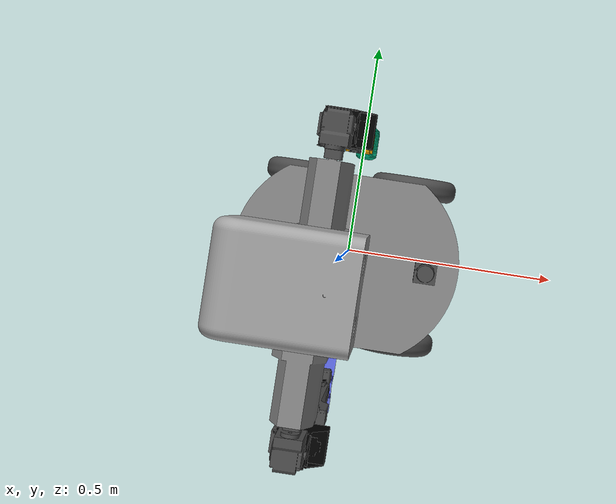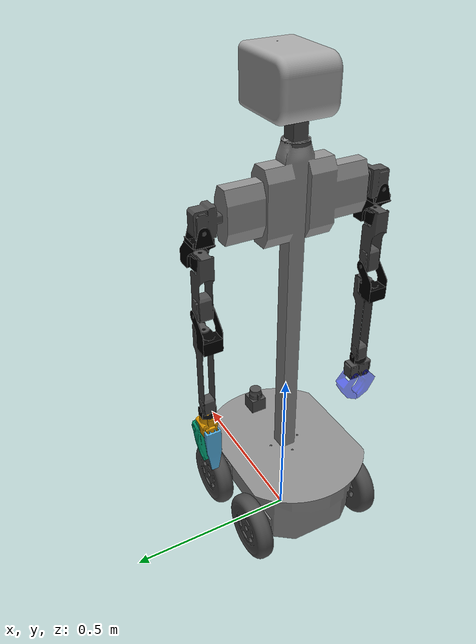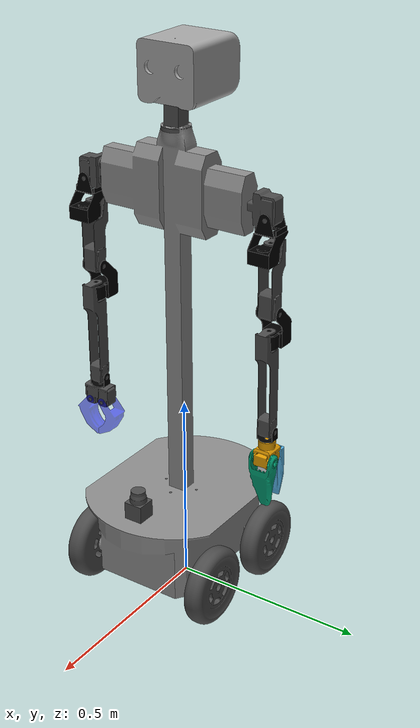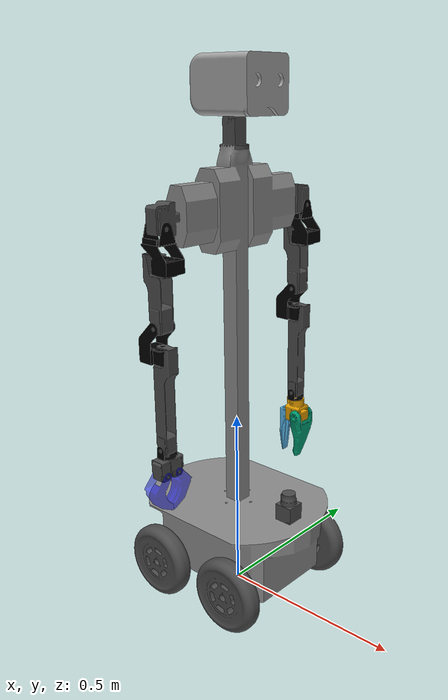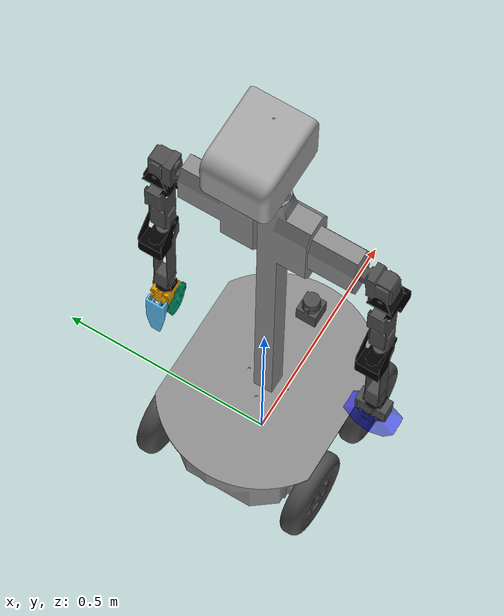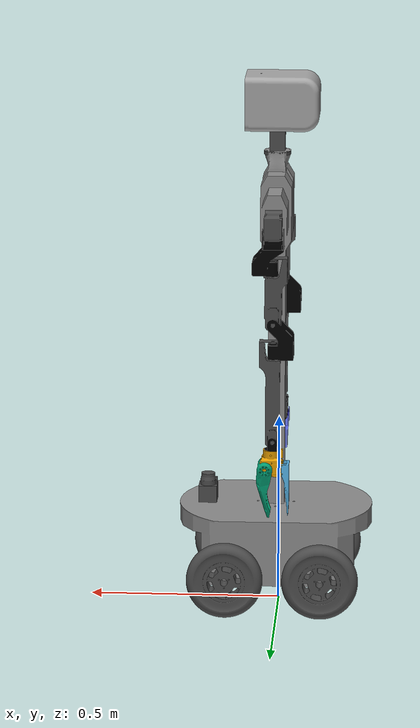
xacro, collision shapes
<?xml version="1.0" ?>
<robot name="bender" xmlns:xacro="http://www.ros.org/wiki/xacro">

  <xacro:include filename="$(find bender_description)/urdf/materials.xacro" />
  <xacro:include filename="$(find bender_description)/urdf/rgbd_camera.xacro"/>

  <xacro:arg name="hardware" default="real"/>
  <xacro:property name="hardware" value="$(arg hardware)"/>
  <xacro:if value="${hardware not in ['real', 'mock', 'sim']}">
    ${xacro.fatal("hardware param must be 'real', 'mock' o 'sim', got: " + hardware)}
  </xacro:if>
  <xacro:arg name="use_arms" default="true"/>
  <xacro:arg name="use_base" default="true"/>
  <xacro:arg name="use_dynamixel" default="true"/>
  <xacro:arg name="use_shoulders" default="true"/>
  <xacro:arg name="use_dxl_right" default="true"/>
  <xacro:include filename="$(find bender_description)/urdf/bender_${hardware}.xacro"/>

  <xacro:property name="epsilon" value="1e-4"/>

  <!-- TODO: change mass -->
  <xacro:property name="gripper_l_base_mass" value="0.0733"/>   <!-- 118.2 cm3 -->
  <xacro:property name="gripper_l_fijo_mass" value="0.0233"/>   <!-- 37.6 cm3 -->
  <xacro:property name="gripper_l_movil_mass" value="0.0420"/>  <!-- 67.8 cm3 -->

  <xacro:rgbd_camera
      prefix=""
      camera_name="camera"
      parent='l3h_1'
      xyz_offset="0.075 0 0.089"
      rpy_offset="0 0.698132 0"/>

  <link name="base_link">
    <visual>
      <origin xyz="0 0 0" rpy="0 0 0"/>
      <geometry>
        <mesh filename="file://$(find bender_description)/meshes/base_link.stl" scale="0.001 0.001 0.001"/>
      </geometry>
      <material name="silver"/>
    </visual>
    <collision>
      <origin xyz="0 0 0" rpy="0 0 0"/>
      <geometry>
        <mesh filename="file://$(find bender_description)/meshes/base_link.stl" scale="0.001 0.001 0.001"/>
      </geometry>
    </collision>
  </link>

  <link name="l2l_1">
    <inertial>
      <origin xyz="-0.008469138038562633 4.816697341814002e-07 -0.07819087904751898" rpy="0 0 0"/>
      <mass value="0.14071836856258027"/>
      <inertia ixx="9.8e-05" iyy="0.000118" izz="8.7e-05" ixy="-0.0" iyz="-0.0" ixz="1.7e-05"/>
    </inertial>
    <visual>
      <origin xyz="-0.035737 -0.247634 -1.04582" rpy="0 0 0"/>
      <geometry>
        <mesh filename="file://$(find bender_description)/meshes/l2l_1.stl" scale="0.001 0.001 0.001"/>
      </geometry>
      <material name="black"/>
    </visual>
    <collision>
      <origin xyz="-0.035737 -0.247634 -1.04582" rpy="0 0 0"/>
      <geometry>
        <mesh filename="file://$(find bender_description)/meshes/l2l_1.stl" scale="0.001 0.001 0.001"/>
      </geometry>
    </collision>
  </link>

  <link name="l3l_1">
    <inertial>
      <origin xyz="-0.004049240589701097 -0.00011662761889197348 -0.1333626785766504" rpy="0 0 0"/>
      <mass value="0.13433192894969845"/>
      <inertia ixx="0.000296" iyy="0.000299" izz="4.9e-05" ixy="0.0" iyz="-0.0" ixz="4e-05"/>
    </inertial>
    <visual>
      <origin xyz="-0.007987 -0.247634 -0.985406" rpy="0 0 0"/>
      <geometry>
        <mesh filename="file://$(find bender_description)/meshes/l3l_1.stl" scale="0.001 0.001 0.001"/>
      </geometry>
      <material name="grey"/>
    </visual>
    <collision>
      <origin xyz="-0.007987 -0.247634 -0.985406" rpy="0 0 0"/>
      <geometry>
        <mesh filename="file://$(find bender_description)/meshes/l3l_1.stl" scale="0.001 0.001 0.001"/>
      </geometry>
    </collision>
  </link>

  <link name="l4l_1">
    <inertial>
      <origin xyz="-0.022033052289373113 -0.027751420924878867 -0.07009451131427447" rpy="0 0 0"/>
      <mass value="0.1319735958452518"/>
      <inertia ixx="6.8e-05" iyy="8e-05" izz="7.4e-05" ixy="-0.0" iyz="0.0" ixz="-2e-06"/>
    </inertial>
    <visual>
      <origin xyz="-0.006819 -0.275388 -0.815556" rpy="0 0 0"/>
      <geometry>
        <mesh filename="file://$(find bender_description)/meshes/l4l_1.stl" scale="0.001 0.001 0.001"/>
      </geometry>
      <material name="black"/>
    </visual>
    <collision>
      <origin xyz="-0.006819 -0.275388 -0.815556" rpy="0 0 0"/>
      <geometry>
        <mesh filename="file://$(find bender_description)/meshes/l4l_1.stl" scale="0.001 0.001 0.001"/>
      </geometry>
    </collision>
  </link>

  <link name="l5l_1">
    <inertial>
      <origin xyz="0.0039138191304953236 -6.519106588914747e-05 -0.1904912654580233" rpy="0 0 0"/>
      <mass value="0.09538513786529154"/>
      <inertia ixx="0.000748" iyy="0.000753" izz="3e-05" ixy="-0.0" iyz="-0.0" ixz="-5.3e-05"/>
    </inertial>
    <visual>
      <origin xyz="-0.006819 -0.247637 -0.767806" rpy="0 0 0"/>
      <geometry>
        <mesh filename="file://$(find bender_description)/meshes/l5l_1.stl" scale="0.001 0.001 0.001"/>
      </geometry>
      <material name="grey"/>
    </visual>
    <collision>
      <origin xyz="-0.006819 -0.247637 -0.767806" rpy="0 0 0"/>
      <geometry>
        <mesh filename="file://$(find bender_description)/meshes/l5l_1.stl" scale="0.001 0.001 0.001"/>
      </geometry>
    </collision>
  </link>

  <link name="l6l_1">
    <inertial>
      <origin xyz="1.1454305421428751e-07 -0.02225042100756011 -0.015076116417847174" rpy="0 0 0"/>
      <mass value="0.004187419664904639"/>
      <inertia ixx="2e-06" iyy="1e-06" izz="2e-06" ixy="-0.0" iyz="0.0" ixz="-0.0"/>
    </inertial>
    <visual>
      <origin xyz="-0.007275 -0.269887 -0.504262" rpy="0 0 0"/>
      <geometry>
        <mesh filename="file://$(find bender_description)/meshes/l6l_1.stl" scale="0.001 0.001 0.001"/>
      </geometry>
      <material name="black"/>
    </visual>
    <collision>
      <origin xyz="-0.007275 -0.269887 -0.504262" rpy="0 0 0"/>
      <geometry>
        <mesh filename="file://$(find bender_description)/meshes/l6l_1.stl" scale="0.001 0.001 0.001"/>
      </geometry>
    </collision>
  </link>

  <link name="l2r_1">
    <inertial>
      <origin xyz="-0.008469138038563282 4.816697872778164e-07 -0.07819087904754218" rpy="0 0 0"/>
      <mass value="0.14071836856258027"/>
      <inertia ixx="9.8e-05" iyy="0.000118" izz="8.7e-05" ixy="-0.0" iyz="-0.0" ixz="1.7e-05"/>
    </inertial>
    <visual>
      <origin xyz="-0.035737 0.262366 -1.04582" rpy="0 0 0"/>
      <geometry>
        <mesh filename="file://$(find bender_description)/meshes/l2r_1.stl" scale="0.001 0.001 0.001"/>
      </geometry>
      <material name="black"/>
    </visual>
    <collision>
      <origin xyz="-0.035737 0.262366 -1.04582" rpy="0 0 0"/>
      <geometry>
        <mesh filename="file://$(find bender_description)/meshes/l2r_1.stl" scale="0.001 0.001 0.001"/>
      </geometry>
    </collision>
  </link>

  <link name="l3r_1">
    <inertial>
      <origin xyz="-0.004049240589694631 -0.00011662761884700945 -0.1333626785766734" rpy="0 0 0"/>
      <mass value="0.13433192894969845"/>
      <inertia ixx="0.000296" iyy="0.000299" izz="4.9e-05" ixy="0.0" iyz="-0.0" ixz="4e-05"/>
    </inertial>
    <visual>
      <origin xyz="-0.007987 0.262366 -0.985406" rpy="0 0 0"/>
      <geometry>
        <mesh filename="file://$(find bender_description)/meshes/l3r_1.stl" scale="0.001 0.001 0.001"/>
      </geometry>
      <material name="grey"/>
    </visual>
    <collision>
      <origin xyz="-0.007987 0.262366 -0.985406" rpy="0 0 0"/>
      <geometry>
        <mesh filename="file://$(find bender_description)/meshes/l3r_1.stl" scale="0.001 0.001 0.001"/>
      </geometry>
    </collision>
  </link>

  <link name="l4r_1">
    <inertial>
      <origin xyz="-0.022033052289359936 0.02775238458496604 -0.070094511314298" rpy="0 0 0"/>
      <mass value="0.1319735958452518"/>
      <inertia ixx="6.8e-05" iyy="8e-05" izz="7.4e-05" ixy="-0.0" iyz="0.0" ixz="-2e-06"/>
    </inertial>
    <visual>
      <origin xyz="-0.006819 0.290116 -0.815556" rpy="0 0 0"/>
      <geometry>
        <mesh filename="file://$(find bender_description)/meshes/l4r_1.stl" scale="0.001 0.001 0.001"/>
      </geometry>
      <material name="black"/>
    </visual>
    <collision>
      <origin xyz="-0.006819 0.290116 -0.815556" rpy="0 0 0"/>
      <geometry>
        <mesh filename="file://$(find bender_description)/meshes/l4r_1.stl" scale="0.001 0.001 0.001"/>
      </geometry>
    </collision>
  </link>

  <link name="l5r_1">
    <inertial>
      <origin xyz="0.003913819130518236 -6.438555604931784e-05 -0.1904912654580455" rpy="0 0 0"/>
      <mass value="0.09538513786529154"/>
      <inertia ixx="0.000748" iyy="0.000753" izz="3e-05" ixy="-0.0" iyz="-0.0" ixz="-5.3e-05"/>
    </inertial>
    <visual>
      <origin xyz="-0.006819 0.262364 -0.767806" rpy="0 0 0"/>
      <geometry>
        <mesh filename="file://$(find bender_description)/meshes/l5r_1.stl" scale="0.001 0.001 0.001"/>
      </geometry>
      <material name="grey"/>
    </visual>
    <collision>
      <origin xyz="-0.006819 0.262364 -0.767806" rpy="0 0 0"/>
      <geometry>
        <mesh filename="file://$(find bender_description)/meshes/l5r_1.stl" scale="0.001 0.001 0.001"/>
      </geometry>
    </collision>
  </link>

  <link name="l6r_1">
    <inertial>
      <origin xyz="1.1454308115020628e-07 0.022250384502269127 -0.015076116417858498" rpy="0 0 0"/>
      <mass value="0.004187419664904639"/>
      <inertia ixx="2e-06" iyy="1e-06" izz="2e-06" ixy="-0.0" iyz="-0.0" ixz="0.0"/>
    </inertial>
    <visual>
      <origin xyz="-0.007275 0.284614 -0.504262" rpy="0 0 0"/>
      <geometry>
        <mesh filename="file://$(find bender_description)/meshes/l6r_1.stl" scale="0.001 0.001 0.001"/>
      </geometry>
      <material name="black"/>
    </visual>
    <collision>
      <origin xyz="-0.007275 0.284614 -0.504262" rpy="0 0 0"/>
      <geometry>
        <mesh filename="file://$(find bender_description)/meshes/l6r_1.stl" scale="0.001 0.001 0.001"/>
      </geometry>
    </collision>
  </link>

  <link name="l2h_1">
    <inertial>
      <origin xyz="-0.01404344492546073 0.030000481747364617 0.06449858090998739" rpy="0 0 0"/>
      <mass value="3.4435410806483597"/>
      <inertia ixx="0.011996" iyy="0.015757" izz="0.017434" ixy="0.0" iyz="-0.0" ixz="-0.000256"/>
    </inertial>
  </link>

  <link name="g1r_1">
    <inertial>
      <origin xyz="6.478948623842799e-05 3.840721814474257e-07 -0.026736939315767316" rpy="0 0 0"/>
      <mass value="0.12876405832743776"/>
      <inertia ixx="8.6e-05" iyy="4.3e-05" izz="7e-05" ixy="-0.0" iyz="-0.0" ixz="0.0"/>
    </inertial>
    <visual>
      <origin xyz="-0.007275 0.262364 -0.480247" rpy="0 0 0"/>
      <geometry>
        <mesh filename="file://$(find bender_description)/meshes/g1r_1.stl" scale="0.001 0.001 0.001"/>
      </geometry>
      <material name="grey"/>
    </visual>
    <collision>
      <origin xyz="-0.007275 0.262364 -0.480247" rpy="0 0 0"/>
      <geometry>
        <mesh filename="file://$(find bender_description)/meshes/g1r_1.stl" scale="0.001 0.001 0.001"/>
      </geometry>
    </collision>
  </link>

  <link name="g2ra_1">
    <inertial>
      <origin xyz="-0.0220993118378398 0.01442646877260062 -0.05721188075257794" rpy="0 0 0"/>
      <mass value="0.05474843522698835"/>
      <inertia ixx="3.9e-05" iyy="3.7e-05" izz="2e-05" ixy="-0.0" iyz="-1e-05" ixz="0.0"/>
    </inertial>
    <visual>
      <origin xyz="-0.029225 0.243864 -0.438647" rpy="0 0 0"/>
      <geometry>
        <mesh filename="file://$(find bender_description)/meshes/g2ra_1.stl" scale="0.001 0.001 0.001"/>
      </geometry>
      <material name="blue"/>
    </visual>
    <collision>
      <origin xyz="-0.029225 0.243864 -0.438647" rpy="0 0 0"/>
      <geometry>
        <mesh filename="file://$(find bender_description)/meshes/g2ra_1.stl" scale="0.001 0.001 0.001"/>
      </geometry>
    </collision>
  </link>

  <link name="g2rb_1">
    <inertial>
      <origin xyz="-0.02210045907599773 -0.014425699768063904 -0.05721188075257849" rpy="0 0 0"/>
      <mass value="0.05474843522698835"/>
      <inertia ixx="3.9e-05" iyy="3.7e-05" izz="2e-05" ixy="-0.0" iyz="1e-05" ixz="-0.0"/>
    </inertial>
    <visual>
      <origin xyz="-0.029225 0.280864 -0.438647" rpy="0 0 0"/>
      <geometry>
        <mesh filename="file://$(find bender_description)/meshes/g2rb_1.stl" scale="0.001 0.001 0.001"/>
      </geometry>
      <material name="blue"/>
    </visual>
    <collision>
      <origin xyz="-0.029225 0.280864 -0.438647" rpy="0 0 0"/>
      <geometry>
        <mesh filename="file://$(find bender_description)/meshes/g2rb_1.stl" scale="0.001 0.001 0.001"/>
      </geometry>
    </collision>
  </link>

  <joint name="l6l_to_gripper" type="fixed">
      <origin xyz="0.0 -0.02225 -0.091" rpy="0 3.14159 0"/>
      <parent link="l6l_1"/>
      <child link="gripper_l_base"/>
    </joint>

    <link name="gripper_l_base">
          <inertial>
            <origin xyz="-0.002432 0.002273 -0.032502" rpy="0 0 0"/>
            <mass value="${gripper_l_base_mass}"/>
            <inertia ixx="${gripper_l_base_mass * 4.79885e-4}" iyy="${gripper_l_base_mass * 5.64127e-4}" izz="${gripper_l_base_mass * 3.73860e-4}"
                     ixy="${gripper_l_base_mass * -2.978e-6}" ixz="${gripper_l_base_mass * 1.7268e-5}" iyz="${gripper_l_base_mass * -1.48e-7}"/>
          </inertial>
          <visual>
            <origin rpy="0 0 0" xyz="0 0 0"/>
            <geometry>
              <mesh filename="file://$(find bender_description)/meshes/base.stl" scale="0.001 0.001 0.001"/>
            </geometry>
          </visual>
          <collision>
            <origin rpy="0 0 0" xyz="0 0 0"/>
            <geometry>
              <mesh filename="file://$(find bender_description)/meshes/base.stl" scale="0.001 0.001 0.001"/>
            </geometry>
          </collision>
        </link>

        <joint name="gripper_base_to_fijo" type="fixed">
          <parent link="gripper_l_base"/>
          <child link="fijo"/>
          <origin xyz="0 0 0"/>
        </joint>

        <link name="fijo">
          <inertial>
            <origin xyz="0.038899 0.002262 0.018539" rpy="0 0 0"/>
            <mass value="${gripper_l_fijo_mass}"/>
            <inertia ixx="${gripper_l_fijo_mass * 1.404186e-3}" iyy="${gripper_l_fijo_mass * 1.246171e-3}" izz="${gripper_l_fijo_mass * 1.92308e-4}"
                     ixy="${gripper_l_fijo_mass * 0.0}" ixz="${gripper_l_fijo_mass * -4.8706e-5}" iyz="${gripper_l_fijo_mass * 0.0}"/>
          </inertial>
          <visual>
            <origin rpy="0 0 0" xyz="0 0 0"/>
            <geometry>
              <mesh filename="file://$(find bender_description)/meshes/fijo_v2.stl" scale="0.001 0.001 0.001"/>
            </geometry>
          </visual>
          <collision>
            <origin rpy="0 0 0" xyz="0 0 0"/>
            <geometry>
              <mesh filename="file://$(find bender_description)/meshes/fijo_v2.stl" scale="0.001 0.001 0.001"/>
            </geometry>
          </collision>
        </link>

        <joint name="gripper_base_to_movil" type="revolute">
          <axis xyz="0 1 0"/>
          <origin rpy="0 0 0" xyz="-0.01869 0 -0.01945"/>
          <parent link="gripper_l_base"/>
          <child link="movil"/>
          <limit effort="1000.0" lower="-2.100" upper="0.359" velocity="0.5"/>
        </joint>

        <link name="movil">
          <inertial>
            <origin xyz="-0.003199 0.002041 0.044445" rpy="0 0 0"/>
            <mass value="${gripper_l_movil_mass}"/>
            <inertia ixx="${gripper_l_movil_mass * 1.909822e-3}" iyy="${gripper_l_movil_mass * 1.526318e-3}" izz="${gripper_l_movil_mass * 5.58397e-4}"
                     ixy="${gripper_l_movil_mass * 1.487e-6}" ixz="${gripper_l_movil_mass * -4.0392e-5}" iyz="${gripper_l_movil_mass * 3.214e-6}"/>
          </inertial>
          <visual>
            <origin rpy="0 0 0" xyz="0 0 0"/>
            <geometry>
              <mesh filename="file://$(find bender_description)/meshes/movil2.stl" scale="0.001 0.001 0.001"/>
            </geometry>
          </visual>
          <collision>
            <origin rpy="0 0 0" xyz="0 0 0"/>
            <geometry>
              <mesh filename="file://$(find bender_description)/meshes/movil2.stl" scale="0.001 0.001 0.001"/>
            </geometry>
          </collision>
        </link>
  <link name="laser_1">
    <inertial>
      <origin xyz="0.00021452729941068283 1.2832545766421587e-05 0.03715423693922987" rpy="0 0 0"/>
      <mass value="0.14304545734211704"/>
      <inertia ixx="8.2e-05" iyy="8.2e-05" izz="4.9e-05" ixy="-0.0" iyz="0.0" ixz="0.0"/>
    </inertial>
    <visual>
      <origin xyz="-0.188322 0.007366 -0.25882" rpy="0 0 0"/>
      <geometry>
        <mesh filename="file://$(find bender_description)/meshes/laser_1.stl" scale="0.001 0.001 0.001"/>
      </geometry>
      <material name="grey"/>
    </visual>
    <collision>
      <origin xyz="-0.188322 0.007366 -0.25882" rpy="0 0 0"/>
      <geometry>
        <mesh filename="file://$(find bender_description)/meshes/laser_1.stl" scale="0.001 0.001 0.001"/>
      </geometry>
    </collision>
  </link>

  <link name="wfr_1">
    <inertial>
      <origin xyz="1.883831442783812e-07 -0.024064274086889242 -4.815819601294846e-07" rpy="0 0 0"/>
      <mass value="1.281712318430354"/>
      <inertia ixx="0.003526" iyy="0.006601" izz="0.003526" ixy="-0.0" iyz="0.0" ixz="0.0"/>
    </inertial>
    <visual>
      <origin xyz="-0.135487 0.164865 -0.09982" rpy="0 0 0"/>
      <geometry>
        <mesh filename="file://$(find bender_description)/meshes/wfr_1.stl" scale="0.001 0.001 0.001"/>
      </geometry>
      <material name="grey"/>
    </visual>
    <collision>
      <origin xyz="-0.135487 0.164865 -0.09982" rpy="0 0 0"/>
      <geometry>
        <mesh filename="file://$(find bender_description)/meshes/wfr_1.stl" scale="0.001 0.001 0.001"/>
      </geometry>
    </collision>
  </link>

  <link name="wrr_1">
    <inertial>
      <origin xyz="1.883831442783812e-07 -0.024064274086889104 -4.815819601294846e-07" rpy="0 0 0"/>
      <mass value="1.281712318430354"/>
      <inertia ixx="0.003526" iyy="0.006601" izz="0.003526" ixy="-0.0" iyz="0.0" ixz="0.0"/>
    </inertial>
    <visual>
      <origin xyz="0.114513 0.164865 -0.09982" rpy="0 0 0"/>
      <geometry>
        <mesh filename="file://$(find bender_description)/meshes/wrr_1.stl" scale="0.001 0.001 0.001"/>
      </geometry>
      <material name="grey"/>
    </visual>
    <collision>
      <origin xyz="0.114513 0.164865 -0.09982" rpy="0 0 0"/>
      <geometry>
        <mesh filename="file://$(find bender_description)/meshes/wrr_1.stl" scale="0.001 0.001 0.001"/>
      </geometry>
    </collision>
  </link>

  <link name="wfl_1">
    <inertial>
      <origin xyz="1.8838314436164794e-07 0.024065023691868914 -4.80844077374587e-07" rpy="0 0 0"/>
      <mass value="1.281712318430354"/>
      <inertia ixx="0.003526" iyy="0.006601" izz="0.003526" ixy="0.0" iyz="0.0" ixz="-0.0"/>
    </inertial>
    <visual>
      <origin xyz="-0.135487 -0.150135 -0.09982" rpy="0 0 0"/>
      <geometry>
        <mesh filename="file://$(find bender_description)/meshes/wfl_1.stl" scale="0.001 0.001 0.001"/>
      </geometry>
      <material name="grey"/>
    </visual>
    <collision>
      <origin xyz="-0.135487 -0.150135 -0.09982" rpy="0 0 0"/>
      <geometry>
        <mesh filename="file://$(find bender_description)/meshes/wfl_1.stl" scale="0.001 0.001 0.001"/>
      </geometry>
    </collision>
  </link>

  <link name="wrl_1">
    <inertial>
      <origin xyz="1.8838314437552572e-07 0.02406502369186897 -4.808440774717315e-07" rpy="0 0 0"/>
      <mass value="1.281712318430354"/>
      <inertia ixx="0.003526" iyy="0.006601" izz="0.003526" ixy="0.0" iyz="0.0" ixz="-0.0"/>
    </inertial>
    <visual>
      <origin xyz="0.114513 -0.150135 -0.09982" rpy="0 0 0"/>
      <geometry>
        <mesh filename="file://$(find bender_description)/meshes/wrl_1.stl" scale="0.001 0.001 0.001"/>
      </geometry>
      <material name="grey"/>
    </visual>
    <collision>
      <origin xyz="0.114513 -0.150135 -0.09982" rpy="0 0 0"/>
      <geometry>
        <mesh filename="file://$(find bender_description)/meshes/wrl_1.stl" scale="0.001 0.001 0.001"/>
      </geometry>
    </collision>
  </link>

  <link name="l1r_1">
    <inertial>
      <origin xyz="-7.750802465356262e-05 -0.023051471870294216 -0.0003746843245819864" rpy="0 0 0"/>
      <mass value="0.17510122063008318"/>
      <inertia ixx="0.000118" iyy="9.1e-05" izz="8e-05" ixy="-0.0" iyz="-1e-06" ixz="-0.0"/>
    </inertial>
    <visual>
      <origin xyz="-0.007987 0.227866 -1.06382" rpy="0 0 0"/>
      <geometry>
        <mesh filename="file://$(find bender_description)/meshes/l1r_1.stl" scale="0.001 0.001 0.001"/>
      </geometry>
      <material name="grey"/>
    </visual>
    <collision>
      <origin xyz="-0.007987 0.227866 -1.06382" rpy="0 0 0"/>
      <geometry>
        <mesh filename="file://$(find bender_description)/meshes/l1r_1.stl" scale="0.001 0.001 0.001"/>
      </geometry>
    </collision>
  </link>

  <link name="l1l_1">
    <inertial>
      <origin xyz="7.755064862937852e-05 0.023052435365023938 -0.0003746843245824305" rpy="0 0 0"/>
      <mass value="0.17510122063008318"/>
      <inertia ixx="0.000118" iyy="9.1e-05" izz="8e-05" ixy="-0.0" iyz="1e-06" ixz="0.0"/>
    </inertial>
    <visual>
      <origin xyz="-0.007987 -0.213134 -1.06382" rpy="0 0 0"/>
      <geometry>
        <mesh filename="file://$(find bender_description)/meshes/l1l_1.stl" scale="0.001 0.001 0.001"/>
      </geometry>
      <material name="grey"/>
    </visual>
    <collision>
      <origin xyz="-0.007987 -0.213134 -1.06382" rpy="0 0 0"/>
      <geometry>
        <mesh filename="file://$(find bender_description)/meshes/l1l_1.stl" scale="0.001 0.001 0.001"/>
      </geometry>
    </collision>
  </link>

  <link name="l1h_1">
    <inertial>
      <origin xyz="2.1311988054537045e-08 4.817473648098883e-07 0.03361523031913305" rpy="0 0 0"/>
      <mass value="0.14686451647034876"/>
      <inertia ixx="0.000113" iyy="0.000108" izz="5.4e-05" ixy="-0.0" iyz="0.0" ixz="0.0"/>
    </inertial>
    <visual>
      <origin xyz="-0.007987 0.007366 -1.22382" rpy="0 0 0"/>
      <geometry>
        <mesh filename="file://$(find bender_description)/meshes/l1h_1.stl" scale="0.001 0.001 0.001"/>
      </geometry>
      <material name="grey"/>
    </visual>
    <collision>
      <origin xyz="-0.007987 0.007366 -1.22382" rpy="0 0 0"/>
      <geometry>
        <mesh filename="file://$(find bender_description)/meshes/l1h_1.stl" scale="0.001 0.001 0.001"/>
      </geometry>
    </collision>
  </link>

  <link name="l3h_1">
    <inertial>
      <origin xyz="0.0 0.0 0.0" rpy="0 0 0"/>
      <mass value="0.001"/>
      <inertia ixx="0.0001" iyy="0.0001" izz="0.0001" ixy="0.0" iyz="0.0" ixz="0.0"/>
    </inertial>

    <visual>
      <origin xyz="-0.007987 0.007366 -1.331" rpy="0 0 0"/>
      <geometry>
        <mesh filename="file://$(find bender_description)/meshes/l2h_1.stl" scale="0.001 0.001 0.001"/>
      </geometry>
      <material name="head"/>
    </visual>
    <!-- Ojo izquierdo -->
    <visual>
      <origin xyz="0.07 -0.03 0.02982" rpy="1.5708 1.5708 1.5708"/> <!-- rotado para que sea un disco plano -->
      <geometry>
        <cylinder radius="0.045" length="0.001"/> <!-- radio 4mm, grosor 1mm -->
      </geometry>
      <material name="light_blue"/>
    </visual>

    <!-- Ojo derecho -->
    <visual>
      <origin xyz="0.07 0.03 0.02982" rpy="1.5708 1.5708 1.5708"/> <!-- rotado para que sea un disco plano -->
      <geometry>
        <cylinder radius="0.045" length="0.001"/>
      </geometry>
      <material name="light_blue"/>
    </visual>

    <!-- Boca -->
    <visual>
      <origin xyz="0.07 0 -0.03482" rpy="0 0 0"/> <!-- rotado para que sea un disco plano -->
      <geometry>
        <box size="0.01 0.08 0.02"/>
      </geometry>
      <material name="casi_blue"/>
    </visual>

    <collision>
      <origin xyz="-0.007987 0.037366 -1.31382" rpy="0 0 0"/>
      <geometry>
        <mesh filename="file://$(find bender_description)/meshes/l2h_1.stl" scale="0.001 0.001 0.001"/>
      </geometry>
    </collision>
  </link>

  <joint name="l2l_to_l1l" type="revolute">
    <origin xyz="0.02775 0.0345 -0.018" rpy="0 0 0"/>
    <parent link="l1l_1"/>
    <child link="l2l_1"/>
    <axis xyz="1.0 0.0 -0.0"/>
    <limit upper="1.794" lower="-0.193" effort="100.0" velocity="100.0"/>
  </joint>

  <joint name="l3l_to_l2l" type="revolute">
    <origin xyz="-0.02775 0.0 -0.060414" rpy="0 0 0"/>
    <parent link="l2l_1"/>
    <child link="l3l_1"/>
    <axis xyz="0.0 -0.0 1.0"/>
    <limit upper="1.148" lower="-1.027" effort="100.0" velocity="100.0"/>
  </joint>

  <!-- Cámara del ojo izquierdo -->
  <link name="camera_eye_link"/>
  <joint name="camera_eye_joint" type="fixed">
    <parent link="l3h_1"/>
    <child link="camera_eye_link"/>
    <origin xyz="0.075 0.041 0.021" rpy="-1.57079632679 0 -1.57079632679"/>
  </joint>

  <joint name="l4l_to_l3l" type="revolute">
    <origin xyz="-0.001168 0.027754 -0.16985" rpy="0 0 0"/>
    <parent link="l3l_1"/>
    <child link="l4l_1"/>
    <axis xyz="-0.0 -1.0 0.0"/>
    <limit upper="2.011" lower="-2.127" effort="100.0" velocity="100.0"/>
  </joint>

  <joint name="l5l_to_l4l" type="revolute">
    <origin xyz="0.0 -0.027751 -0.04775" rpy="0 0 0"/>
    <parent link="l4l_1"/>
    <child link="l5l_1"/>
    <axis xyz="0.0 -0.0 -1.0"/>
    <limit upper="1.308" lower="-1.262" effort="100.0" velocity="100.0"/>
  </joint>

  <joint name="l6l_to_l5l" type="revolute">
    <origin xyz="0.000456 0.02225 -0.263544" rpy="0 0 0"/>
    <parent link="l5l_1"/>
    <child link="l6l_1"/>
    <axis xyz="0.0 1.0 0.0"/>
    <limit upper="1.508" lower="-1.209" effort="100.0" velocity="100.0"/>
  </joint>

  <joint name="l2r_to_l1r" type="revolute">
    <origin xyz="0.02775 -0.0345 -0.018" rpy="0 0 0"/>
    <parent link="l1r_1"/>
    <child link="l2r_1"/>
    <axis xyz="1.0 0.0 0.0"/>
    <limit upper="0.181" lower="-1.668" effort="100.0" velocity="100.0"/>
  </joint>

  <joint name="l3r_to_l2r" type="revolute">
    <origin xyz="-0.02775 0.0 -0.060414" rpy="0 0 0"/>
    <parent link="l2r_1"/>
    <child link="l3r_1"/>
    <axis xyz="0.0 0.0 -1.0"/>
    <limit upper="1.138" lower="-1.240" effort="100.0" velocity="100.0"/>
  </joint>

  <joint name="l4r_to_l3r" type="revolute">
    <origin xyz="-0.001168 -0.02775 -0.16985" rpy="0 0 0"/>
    <parent link="l3r_1"/>
    <child link="l4r_1"/>
    <axis xyz="-0.0 1.0 0.0"/>
    <limit upper="1.974" lower="-2.100" effort="100.0" velocity="100.0"/>
  </joint>

  <joint name="l5r_to_l4r" type="revolute">
    <origin xyz="0.0 0.027752 -0.04775" rpy="0 0 0"/>
    <parent link="l4r_1"/>
    <child link="l5r_1"/>
    <axis xyz="-0.0 0.0 -1.0"/>
    <limit upper="1.314" lower="-1.150" effort="100.0" velocity="100.0"/>
  </joint>

  <joint name="l6r_to_l5r" type="revolute">
    <origin xyz="0.000456 -0.02225 -0.263544" rpy="0 0 0"/>
    <parent link="l5r_1"/>
    <child link="l6r_1"/>
    <axis xyz="-0.0 1.0 0.0"/>
    <limit upper="1.867" lower="-1.948" effort="100.0" velocity="100.0"/>
  </joint>

  <!-- head pitch joint -->
  <joint name="l2h_to_l1h" type="revolute">
    <origin rpy="0 0 0" xyz="0.0 0.0 0.105"/>
    <parent link="l1h_1"/>
    <child link="l2h_1"/>
    <axis xyz="-0.0 1.0 0.0"/>
    <limit effort="50" lower="-0.726" upper="0.625" velocity="50"/>
  </joint>

  <joint name="l3h_to_l2h" type="revolute">
    <origin rpy="0 0 0" xyz="0.0 0 0"/>
    <parent link="l2h_1"/>
    <child link="l3h_1"/>
    <axis xyz="1.0 0.0 0.0"/>
    <limit effort="50" lower="-0.405" upper="0.458" velocity="50"/>
  </joint>

  <joint name="g1r_to_l6r" type="fixed">
    <origin xyz="0.0 0.02225 -0.024015" rpy="0 0 0"/>
    <parent link="l6r_1"/>
    <child link="g1r_1"/>
  </joint>

  <joint name="g2ra_to_g1r" type="revolute">
      <origin xyz="0.02195 0.0185 -0.0416" rpy="0 0 0"/>
      <parent link="g1r_1"/>
      <child link="g2ra_1"/>
      <axis xyz="1.0 -0.0 -0.0"/>
      <limit upper="${1.570796 + epsilon}" lower="${-epsilon}" effort="100.0" velocity="100.0"/>
    </joint>

    <joint name="g2rb_to_g1r" type="revolute">
      <origin xyz="0.02195 -0.0185 -0.0416" rpy="0 0 0"/>
      <parent link="g1r_1"/>
      <child link="g2rb_1"/>
      <axis xyz="1.0 -0.0 -0.0"/>
      <limit upper="${epsilon}" lower="${-1.570796 - epsilon}" effort="100.0" velocity="100.0"/>
      <!-- Agregamos la etiqueta mimic aquí -->
      <mimic joint="g2ra_to_g1r" multiplier="-1.0" offset="0.0"/>
    </joint>

    <link name="TCP"/>

    <joint name="g1r_to_TCP" type="fixed">
      <origin xyz="0.0 0.0 -0.12" rpy="3.14159 0 1.5707963"/>
      <parent link="g1r_1"/>
      <child link="TCP"/>
    </joint>
  <joint name="laser_to_base_link" type="fixed">
    <origin xyz="0.188322 -0.007366 0.25882" rpy="0 0 0"/>
    <parent link="base_link"/>
    <child link="laser_1"/>
  </joint>

  <joint name="wfr_to_base_link" type="continuous">
    <origin rpy="0 0 0" xyz="0.135487 -0.164865 0.09982"/>
    <parent link="base_link"/>
    <child link="wfr_1"/>
    <axis xyz="0 1 0"/>
    <mimic joint="wrr_to_base_link" multiplier="1.0" offset="0.0"/>
  </joint>

  <joint name="wrr_to_base_link" type="continuous">
    <origin rpy="0 0 0" xyz="-0.114513 -0.164865 0.09982"/>
    <parent link="base_link"/>
    <child link="wrr_1"/>
    <axis xyz="0 1 0"/>
  </joint>

  <joint name="wfl_to_base_link" type="continuous">
    <origin rpy="0 0 0" xyz="0.135487 0.150135 0.09982"/>
    <parent link="base_link"/>
    <child link="wfl_1"/>
    <axis xyz="0 1 0"/>
    <mimic joint="wrl_to_base_link" multiplier="1.0" offset="0.0"/>
  </joint>

  <joint name="wrl_to_base_link" type="continuous">
    <origin rpy="0 0 0" xyz="-0.114513 0.150135 0.09982"/>
    <parent link="base_link"/>
    <child link="wrl_1"/>
    <axis xyz="0 1 0"/>

  </joint>

  <joint name="l1r_to_base_link" type="revolute">
    <origin xyz="0.007987 -0.227866 1.06382" rpy="0 0 0"/>
    <parent link="base_link"/>
    <child link="l1r_1"/>
    <axis xyz="0.0 -1.0 0.0"/>
    <limit upper="${2.356194 + epsilon}" lower="${-1.570796 - epsilon}" effort="100.0" velocity="100.0"/>
  </joint>

  <joint name="l1l_to_base_link" type="revolute">
    <origin xyz="0.007987 0.213134 1.06382" rpy="0 0 0"/>
    <parent link="base_link"/>
    <child link="l1l_1"/>
    <axis xyz="0.0 -1.0 0.0"/>
    <limit upper="${2.356194 + epsilon}" lower="${-1.570796 - epsilon}" effort="100.0" velocity="100.0"/>
  </joint>

  <joint name="l1h_to_base_link" type="revolute">
    <origin rpy="0 0 0" xyz="0.007987 -0.007366 1.21382"/>
    <parent link="base_link"/>
    <child link="l1h_1"/>
    <axis xyz="0.0 0.0 1.0"/>
    <limit effort="50.0" lower="-3.229" upper="1.948" velocity="50.0"/>
  </joint>

  <link name="base_footprint"/>
  <joint name="base_footprint_joint" type="fixed">
    <parent link="base_link"/>
    <child link="base_footprint"/>
    <origin xyz="0 0 0" rpy="0 0 0"/>
  </joint>
</robot>

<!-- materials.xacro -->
<robot>

  <material name="black">
    <color rgba="0.0 0.0 0.0 1.0"/>
  </material>

  <material name="grey">
    <color rgba="0.3 0.3 0.3 1.0"/>
  </material>

  <material name="white">
    <color rgba="1.0 1.0 1.0 1.0"/>
  </material>

  <material name="silver">
    <color rgba="0.55 0.55 0.55 1.0"/>
  </material>

  <material name="head">
    <color rgba="0.65 0.65 0.65 1.0"/>
  </material>

  <material name="blue">
    <color rgba="0 0 1 0.5"/>
  </material>

  <material name="red">
    <color rgba="1 0 0 0.5"/>
  </material>

  <material name="light_blue">
    <color rgba="0.6 0.8 1 1"/>
  </material>

  <material name="casi_blue">
    <color rgba="0.2 0.3 1 1"/>
  </material>

</robot>

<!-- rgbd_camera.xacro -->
<robot xmlns:xacro="http://www.ros.org/wiki/xacro">

  <xacro:property name="M_PI" value="3.1415926535897931" />

  <xacro:macro name="rgbd_camera" params="
    prefix:=''
    camera_name:='camera'
    parent:='l2h_1'
    mesh_file:='file://$(find bender_description)/meshes/d435.stl'
    xyz_offset:='0.0415 0.03 0.125'
    rpy_offset:='0 -0.50 0'
    mesh_xyz_offset:='0 0 0'
    mesh_rpy_offset:='${M_PI/2} 0.0 ${M_PI/2}'
    collision_xyz_offset:='0 0 0'
    collision_rpy_offset:='0 0 0'
    inertial_xyz_offset:='0 0 0'
    inertial_rpy_offset:='0 0 0'
    optical_xyz_offset:='0 0 0'
    optical_rpy_offset:='${-M_PI/2} 0 ${-M_PI/2}'
    depth_frame_xyz_offset:='0 0 0'
    depth_frame_rpy_offset:='0 0 0'
    infra1_xyz_offset:='0 0 0'
    infra1_rpy_offset:='0 0 0'
    infra2_xyz_offset:='0 -0.05 0'
    infra2_rpy_offset:='0 0 0'
    color_xyz_offset:='0 0.015 0'
    color_rpy_offset:='0 0 0'
    cam_width:=0.090
    cam_height:=0.025
    cam_depth:=0.02505
    mass:=0.072
    ixx:=0.003881243
    ixy:=0.0
    ixz:=0.0
    iyy:=0.000498940
    iyz:=0.0
    izz:=0.003879257
    material_name:='aluminum'
    material_color:='0.5 0.5 0.5 1'
    horizontal_fov:=1.5184
    image_width:=424
    image_height:=240
    clip_near:=0.05
    clip_far:=1.5
    update_rate:=2
    always_on:=1
    visualize:=true
    enable_collision:=false">

    <link name="${prefix}${camera_name}_link">
      <visual>
        <origin xyz="${mesh_xyz_offset}" rpy="${mesh_rpy_offset}"/>
        <geometry>
          <mesh filename="${mesh_file}" />
        </geometry>
        <material name="${material_name}">
          <color rgba="${material_color}"/>
        </material>
      </visual>
      <xacro:if value="${enable_collision}">
        <collision>
          <origin xyz="${collision_xyz_offset}" rpy="${collision_rpy_offset}"/>
          <geometry>
            <box size="${cam_depth} ${cam_width} ${cam_height}"/>
          </geometry>
        </collision>
      </xacro:if>
      <inertial>
        <mass value="${mass}" />
        <origin xyz="${inertial_xyz_offset}" rpy="${inertial_rpy_offset}"/>
        <inertia ixx="${ixx}" ixy="${ixy}" ixz="${ixz}"
                 iyy="${iyy}" iyz="${iyz}" izz="${izz}" />
      </inertial>
    </link>

    <joint name="${prefix}${camera_name}_joint" type="fixed">
      <parent link="${prefix}${parent}"/>
      <child link="${prefix}${camera_name}_link" />
      <origin xyz="${xyz_offset}" rpy="${rpy_offset}"/>
    </joint>

    <joint name="${prefix}${camera_name}_depth_joint" type="fixed">
      <origin xyz="${depth_frame_xyz_offset}" rpy="${depth_frame_rpy_offset}"/>
      <parent link="${prefix}${camera_name}_link"/>
      <child link="${prefix}${camera_name}_depth_frame" />
    </joint>
    <link name="${prefix}${camera_name}_depth_frame"/>

    <joint name="${prefix}${camera_name}_depth_optical_joint" type="fixed">
      <origin xyz="${optical_xyz_offset}" rpy="${optical_rpy_offset}" />
      <parent link="${prefix}${camera_name}_depth_frame" />
      <child link="${prefix}${camera_name}_depth_optical_frame" />
    </joint>
    <link name="${prefix}${camera_name}_depth_optical_frame"/>

    <joint name="${prefix}${camera_name}_infra1_joint" type="fixed">
      <origin xyz="${infra1_xyz_offset}" rpy="${infra1_rpy_offset}" />
      <parent link="${prefix}${camera_name}_link" />
      <child link="${prefix}${camera_name}_infra1_frame" />
    </joint>
    <link name="${prefix}${camera_name}_infra1_frame"/>

    <joint name="${prefix}${camera_name}_infra1_optical_joint" type="fixed">
      <origin xyz="${optical_xyz_offset}" rpy="${optical_rpy_offset}" />
      <parent link="${prefix}${camera_name}_infra1_frame" />
      <child link="${prefix}${camera_name}_infra1_optical_frame" />
    </joint>
    <link name="${prefix}${camera_name}_infra1_optical_frame"/>

    <joint name="${prefix}${camera_name}_infra2_joint" type="fixed">
      <origin xyz="${infra2_xyz_offset}" rpy="${infra2_rpy_offset}" />
      <parent link="${prefix}${camera_name}_link" />
      <child link="${prefix}${camera_name}_infra2_frame" />
    </joint>
    <link name="${prefix}${camera_name}_infra2_frame"/>

    <joint name="${prefix}${camera_name}_infra2_optical_joint" type="fixed">
      <origin xyz="${optical_xyz_offset}" rpy="${optical_rpy_offset}" />
      <parent link="${prefix}${camera_name}_infra2_frame" />
      <child link="${prefix}${camera_name}_infra2_optical_frame" />
    </joint>
    <link name="${prefix}${camera_name}_infra2_optical_frame"/>

    <joint name="${prefix}${camera_name}_color_joint" type="fixed">
      <origin xyz="${color_xyz_offset}" rpy="${color_rpy_offset}" />
      <parent link="${prefix}${camera_name}_link" />
      <child link="${prefix}${camera_name}_color_frame" />
    </joint>
    <link name="${prefix}${camera_name}_color_frame"/>

    <joint name="${prefix}${camera_name}_color_optical_joint" type="fixed">
      <origin xyz="${optical_xyz_offset}" rpy="${optical_rpy_offset}" />
      <parent link="${prefix}${camera_name}_color_frame" />
      <child link="${prefix}${camera_name}_color_optical_frame" />
    </joint>
    <link name="${prefix}${camera_name}_color_optical_frame"/>

    <gazebo reference="${prefix}${camera_name}_link">
      <sensor name="${prefix}${camera_name}" type="rgbd_camera">
        <always_on>true</always_on>
        <visualize>true</visualize>
        <update_rate>30</update_rate>
        <topic>${camera_name}</topic>
        <gz_frame_id>${camera_name}_link</gz_frame_id>
        <camera>
          <camera_info_topic>camera_info</camera_info_topic>
          <horizontal_fov>${horizontal_fov}</horizontal_fov>

          <image>
            <width>${image_width}</width>
            <height>${image_height}</height>
          </image>

          <clip>
            <near>${clip_near}</near>
            <far>${clip_far}</far>
          </clip>

          <noise>
            <type>gaussian</type>
            <mean>0.0</mean>
            <stddev>0.007</stddev>
          </noise>
        </camera>
      </sensor>
    </gazebo>

  </xacro:macro>
</robot>
